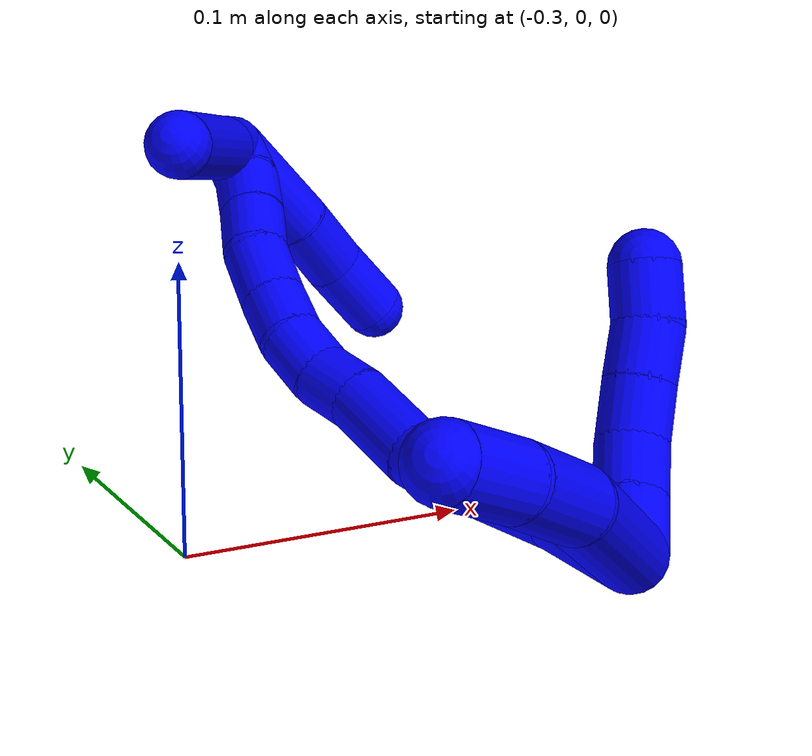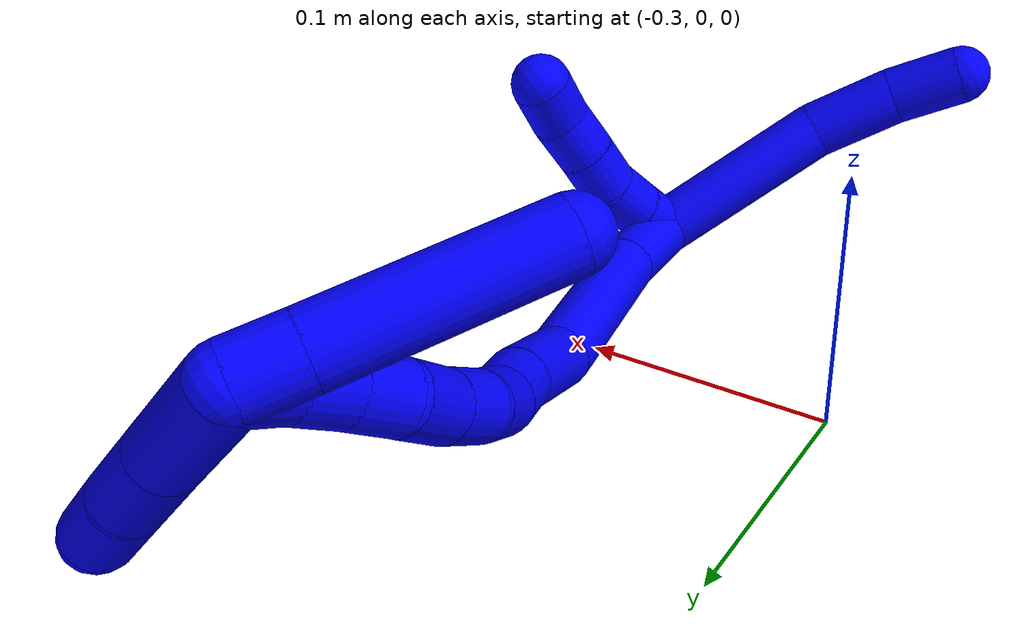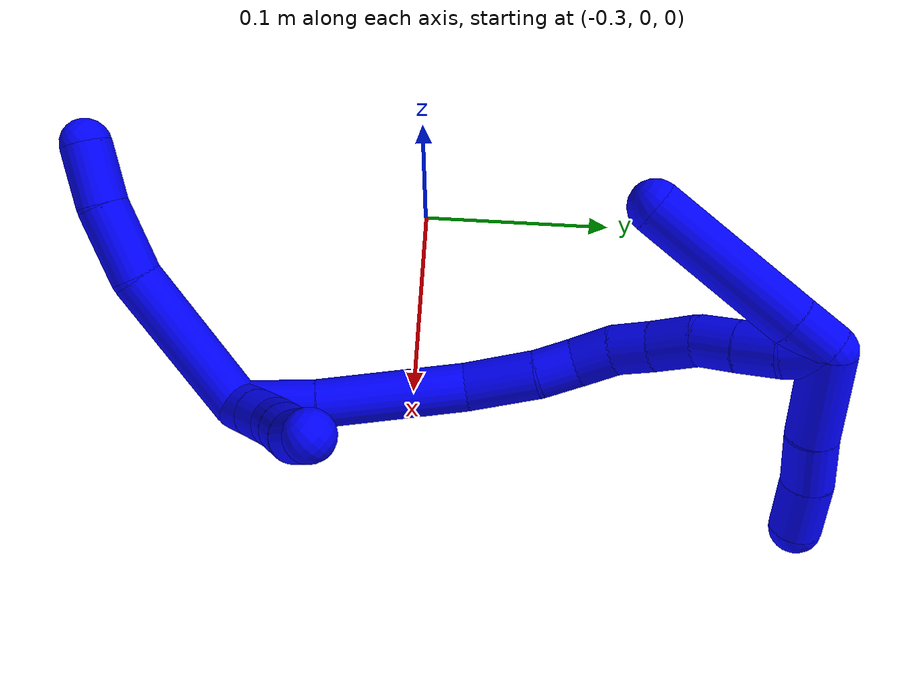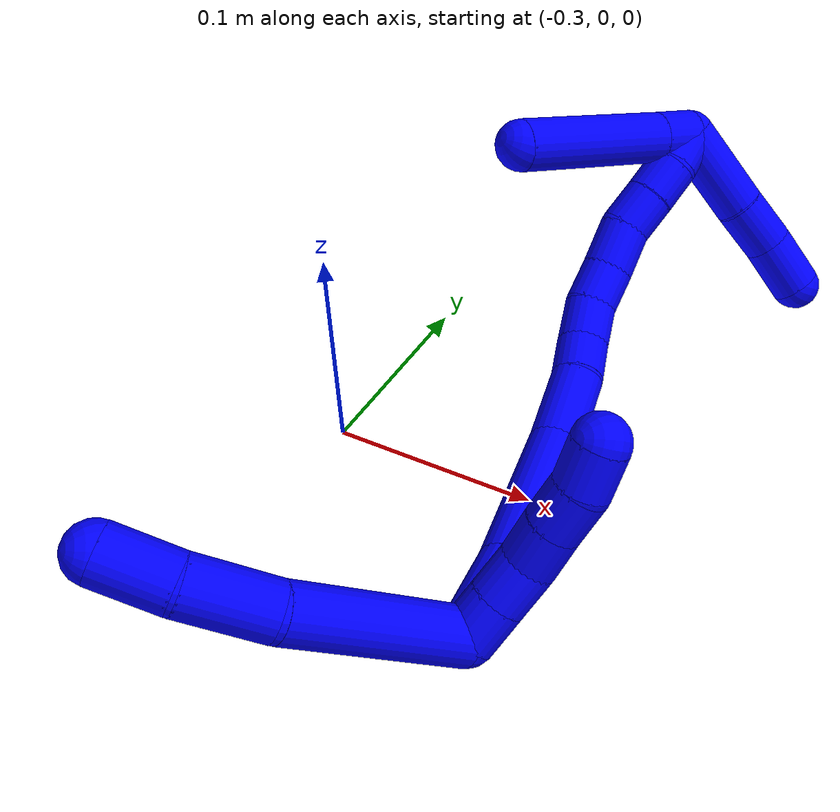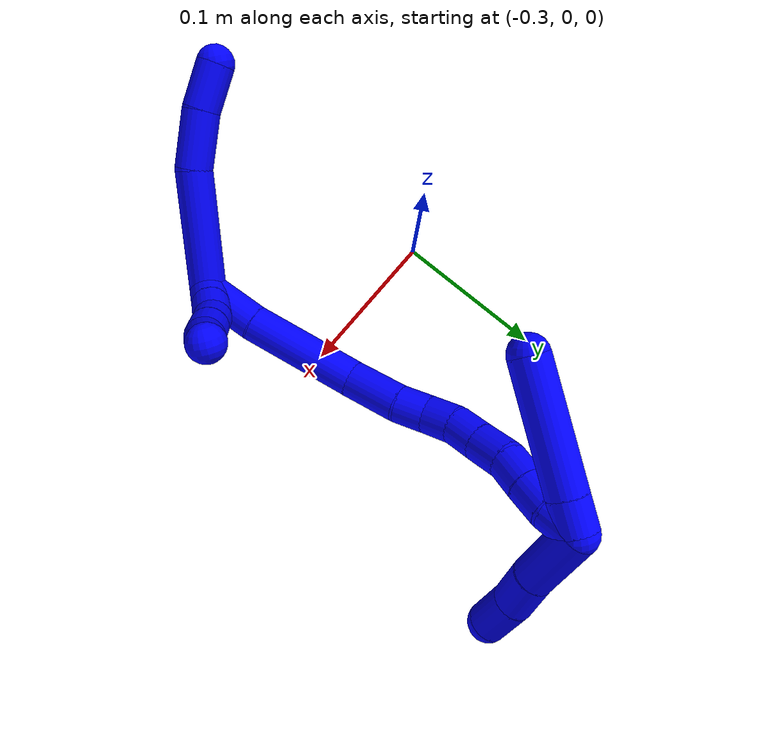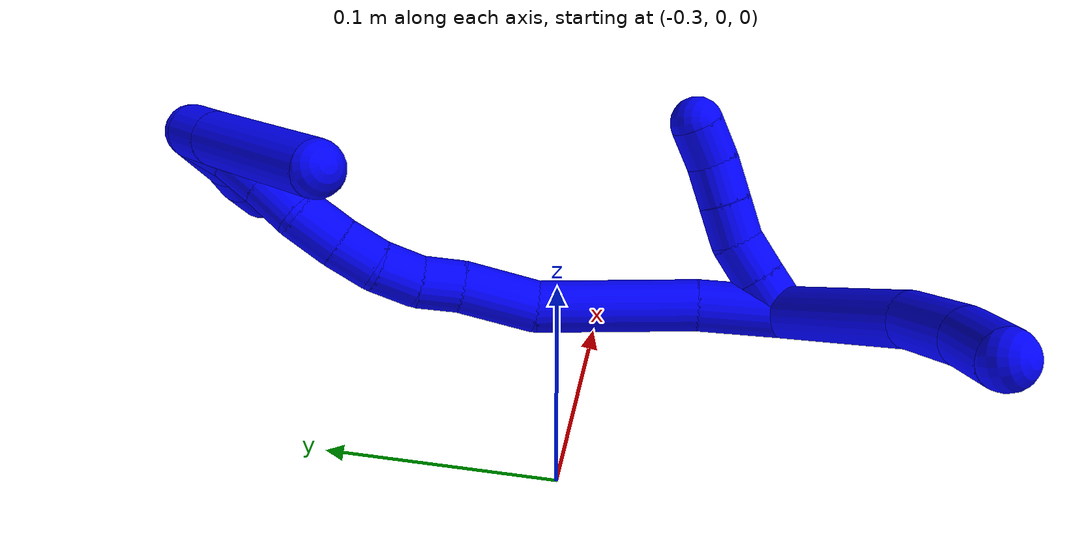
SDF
<sdf version="1.7">
 <world name="default">
  <model name="1">
   <static>0</static>
   <link name="1">
    <collision name="collision-cylinder-e_1_2_8">
     <pose>0.00278 0.004993 -0.040425 -3.0187 0.068136 -1.01178</pose>
     <geometry><cylinder><radius>0.0125</radius><length>0.081654</length></cylinder></geometry>
     <surface>
      <friction><ode><mu>1.16</mu><mu2>1.16</mu2><slip1>0</slip1><slip2>0</slip2></ode></friction>
      <contact><ode><kp>1e+06</kp><kd>1</kd><max_vel>0</max_vel><min_depth>0.001</min_depth></ode></contact>
     </surface>
    </collision>
    <visual name="visual-cylinder-e_1_2_8">
     <pose>0.00278 0.004993 -0.040425 -3.0187 0.068136 -1.01178</pose>
     <geometry><cylinder><radius>0.0125</radius><length>0.081654</length></cylinder></geometry>
     <material><ambient>0 0 1 1</ambient></material>
    </visual>
    <collision name="collision-cylinder-e_2_8_9">
     <pose>0.009618 0.01579 -0.098448 -2.823 0.21564 -1.18576</pose>
     <geometry><cylinder><radius>0.0125</radius><length>0.037938</length></cylinder></geometry>
     <surface>
      <friction><ode><mu>1.16</mu><mu2>1.16</mu2><slip1>0</slip1><slip2>0</slip2></ode></friction>
      <contact><ode><kp>1e+06</kp><kd>1</kd><max_vel>0</max_vel><min_depth>0.001</min_depth></ode></contact>
     </surface>
    </collision>
    <visual name="visual-cylinder-e_2_8_9">
     <pose>0.009618 0.01579 -0.098448 -2.823 0.21564 -1.18576</pose>
     <geometry><cylinder><radius>0.0125</radius><length>0.037938</length></cylinder></geometry>
     <material><ambient>0 0 1 1</ambient></material>
    </visual>
    <collision name="collision-cylinder-e_3_9_6">
     <pose>0.018261 0.028159 -0.128969 -2.67159 0.306284 -1.14524</pose>
     <geometry><cylinder><radius>0.0125</radius><length>0.030408</length></cylinder></geometry>
     <surface>
      <friction><ode><mu>1.16</mu><mu2>1.16</mu2><slip1>0</slip1><slip2>0</slip2></ode></friction>
      <contact><ode><kp>1e+06</kp><kd>1</kd><max_vel>0</max_vel><min_depth>0.001</min_depth></ode></contact>
     </surface>
    </collision>
    <visual name="visual-cylinder-e_3_9_6">
     <pose>0.018261 0.028159 -0.128969 -2.67159 0.306284 -1.14524</pose>
     <geometry><cylinder><radius>0.0125</radius><length>0.030408</length></cylinder></geometry>
     <material><ambient>0 0 1 1</ambient></material>
    </visual>
    <collision name="collision-cylinder-e_1_2_10">
     <pose>-0.007935 0.005463 0.002682 -1.11432 -0.916551 0.596333</pose>
     <geometry><cylinder><radius>0.0125</radius><length>0.02</length></cylinder></geometry>
     <surface>
      <friction><ode><mu>1.16</mu><mu2>1.16</mu2><slip1>0</slip1><slip2>0</slip2></ode></friction>
      <contact><ode><kp>1e+06</kp><kd>1</kd><max_vel>0</max_vel><min_depth>0.001</min_depth></ode></contact>
     </surface>
    </collision>
    <visual name="visual-cylinder-e_1_2_10">
     <pose>-0.007935 0.005463 0.002682 -1.11432 -0.916551 0.596333</pose>
     <geometry><cylinder><radius>0.0125</radius><length>0.02</length></cylinder></geometry>
     <material><ambient>0 0 1 1</ambient></material>
    </visual>
    <collision name="collision-cylinder-e_2_10_11">
     <pose>-0.023918 0.016291 0.007902 -1.1292 -0.935363 0.619202</pose>
     <geometry><cylinder><radius>0.0125</radius><length>0.02</length></cylinder></geometry>
     <surface>
      <friction><ode><mu>1.16</mu><mu2>1.16</mu2><slip1>0</slip1><slip2>0</slip2></ode></friction>
      <contact><ode><kp>1e+06</kp><kd>1</kd><max_vel>0</max_vel><min_depth>0.001</min_depth></ode></contact>
     </surface>
    </collision>
    <visual name="visual-cylinder-e_2_10_11">
     <pose>-0.023918 0.016291 0.007902 -1.1292 -0.935363 0.619202</pose>
     <geometry><cylinder><radius>0.0125</radius><length>0.02</length></cylinder></geometry>
     <material><ambient>0 0 1 1</ambient></material>
    </visual>
    <collision name="collision-cylinder-e_3_11_12">
     <pose>-0.040842 0.026264 0.01045 -1.56813 -1.09202 1.08965</pose>
     <geometry><cylinder><radius>0.0125</radius><length>0.02</length></cylinder></geometry>
     <surface>
      <friction><ode><mu>1.16</mu><mu2>1.16</mu2><slip1>0</slip1><slip2>0</slip2></ode></friction>
      <contact><ode><kp>1e+06</kp><kd>1</kd><max_vel>0</max_vel><min_depth>0.001</min_depth></ode></contact>
     </surface>
    </collision>
    <visual name="visual-cylinder-e_3_11_12">
     <pose>-0.040842 0.026264 0.01045 -1.56813 -1.09202 1.08965</pose>
     <geometry><cylinder><radius>0.0125</radius><length>0.02</length></cylinder></geometry>
     <material><ambient>0 0 1 1</ambient></material>
    </visual>
    <collision name="collision-cylinder-e_4_12_13">
     <pose>-0.058719 0.035216 0.010776 -1.49879 -1.12007 1.05626</pose>
     <geometry><cylinder><radius>0.0125</radius><length>0.02</length></cylinder></geometry>
     <surface>
      <friction><ode><mu>1.16</mu><mu2>1.16</mu2><slip1>0</slip1><slip2>0</slip2></ode></friction>
      <contact><ode><kp>1e+06</kp><kd>1</kd><max_vel>0</max_vel><min_depth>0.001</min_depth></ode></contact>
     </surface>
    </collision>
    <visual name="visual-cylinder-e_4_12_13">
     <pose>-0.058719 0.035216 0.010776 -1.49879 -1.12007 1.05626</pose>
     <geometry><cylinder><radius>0.0125</radius><length>0.02</length></cylinder></geometry>
     <material><ambient>0 0 1 1</ambient></material>
    </visual>
    <collision name="collision-cylinder-e_5_13_5">
     <pose>-0.075617 0.045667 0.010493 -1.66815 -0.910292 0.989562</pose>
     <geometry><cylinder><radius>0.0125</radius><length>0.02</length></cylinder></geometry>
     <surface>
      <friction><ode><mu>1.16</mu><mu2>1.16</mu2><slip1>0</slip1><slip2>0</slip2></ode></friction>
      <contact><ode><kp>1e+06</kp><kd>1</kd><max_vel>0</max_vel><min_depth>0.001</min_depth></ode></contact>
     </surface>
    </collision>
    <visual name="visual-cylinder-e_5_13_5">
     <pose>-0.075617 0.045667 0.010493 -1.66815 -0.910292 0.989562</pose>
     <geometry><cylinder><radius>0.0125</radius><length>0.02</length></cylinder></geometry>
     <material><ambient>0 0 1 1</ambient></material>
    </visual>
    <collision name="collision-cylinder-e_1_2_14">
     <pose>-0.000406 0.015433 0.012999 -0.870801 -0.020115 0.009357</pose>
     <geometry><cylinder><radius>0.0125</radius><length>0.040365</length></cylinder></geometry>
     <surface>
      <friction><ode><mu>1.16</mu><mu2>1.16</mu2><slip1>0</slip1><slip2>0</slip2></ode></friction>
      <contact><ode><kp>1e+06</kp><kd>1</kd><max_vel>0</max_vel><min_depth>0.001</min_depth></ode></contact>
     </surface>
    </collision>
    <visual name="visual-cylinder-e_1_2_14">
     <pose>-0.000406 0.015433 0.012999 -0.870801 -0.020115 0.009357</pose>
     <geometry><cylinder><radius>0.0125</radius><length>0.040365</length></cylinder></geometry>
     <material><ambient>0 0 1 1</ambient></material>
    </visual>
    <collision name="collision-cylinder-e_2_14_15">
     <pose>0.00207 0.061515 0.048839 -0.930355 0.075247 -0.037781</pose>
     <geometry><cylinder><radius>0.0125</radius><length>0.076663</length></cylinder></geometry>
     <surface>
      <friction><ode><mu>1.16</mu><mu2>1.16</mu2><slip1>0</slip1><slip2>0</slip2></ode></friction>
      <contact><ode><kp>1e+06</kp><kd>1</kd><max_vel>0</max_vel><min_depth>0.001</min_depth></ode></contact>
     </surface>
    </collision>
    <visual name="visual-cylinder-e_2_14_15">
     <pose>0.00207 0.061515 0.048839 -0.930355 0.075247 -0.037781</pose>
     <geometry><cylinder><radius>0.0125</radius><length>0.076663</length></cylinder></geometry>
     <material><ambient>0 0 1 1</ambient></material>
    </visual>
    <collision name="collision-cylinder-e_3_15_16">
     <pose>0.001598 0.108796 0.079638 -1.12446 -0.179877 0.113518</pose>
     <geometry><cylinder><radius>0.0125</radius><length>0.037482</length></cylinder></geometry>
     <surface>
      <friction><ode><mu>1.16</mu><mu2>1.16</mu2><slip1>0</slip1><slip2>0</slip2></ode></friction>
      <contact><ode><kp>1e+06</kp><kd>1</kd><max_vel>0</max_vel><min_depth>0.001</min_depth></ode></contact>
     </surface>
    </collision>
    <visual name="visual-cylinder-e_3_15_16">
     <pose>0.001598 0.108796 0.079638 -1.12446 -0.179877 0.113518</pose>
     <geometry><cylinder><radius>0.0125</radius><length>0.037482</length></cylinder></geometry>
     <material><ambient>0 0 1 1</ambient></material>
    </visual>
    <collision name="collision-cylinder-e_4_16_17">
     <pose>-0.00199 0.134981 0.091479 -1.18484 -0.022885 0.015404</pose>
     <geometry><cylinder><radius>0.0125</radius><length>0.020628</length></cylinder></geometry>
     <surface>
      <friction><ode><mu>1.16</mu><mu2>1.16</mu2><slip1>0</slip1><slip2>0</slip2></ode></friction>
      <contact><ode><kp>1e+06</kp><kd>1</kd><max_vel>0</max_vel><min_depth>0.001</min_depth></ode></contact>
     </surface>
    </collision>
    <visual name="visual-cylinder-e_4_16_17">
     <pose>-0.00199 0.134981 0.091479 -1.18484 -0.022885 0.015404</pose>
     <geometry><cylinder><radius>0.0125</radius><length>0.020628</length></cylinder></geometry>
     <material><ambient>0 0 1 1</ambient></material>
    </visual>
    <collision name="collision-cylinder-e_5_17_18">
     <pose>-0.004984 0.15428 0.097842 -1.32155 -0.26761 0.208517</pose>
     <geometry><cylinder><radius>0.0125</radius><length>0.020855</length></cylinder></geometry>
     <surface>
      <friction><ode><mu>1.16</mu><mu2>1.16</mu2><slip1>0</slip1><slip2>0</slip2></ode></friction>
      <contact><ode><kp>1e+06</kp><kd>1</kd><max_vel>0</max_vel><min_depth>0.001</min_depth></ode></contact>
     </surface>
    </collision>
    <visual name="visual-cylinder-e_5_17_18">
     <pose>-0.004984 0.15428 0.097842 -1.32155 -0.26761 0.208517</pose>
     <geometry><cylinder><radius>0.0125</radius><length>0.020855</length></cylinder></geometry>
     <material><ambient>0 0 1 1</ambient></material>
    </visual>
    <collision name="collision-cylinder-e_6_18_19">
     <pose>-0.012333 0.172453 0.103892 -1.17009 -0.465022 0.31117</pose>
     <geometry><cylinder><radius>0.0125</radius><length>0.020479</length></cylinder></geometry>
     <surface>
      <friction><ode><mu>1.16</mu><mu2>1.16</mu2><slip1>0</slip1><slip2>0</slip2></ode></friction>
      <contact><ode><kp>1e+06</kp><kd>1</kd><max_vel>0</max_vel><min_depth>0.001</min_depth></ode></contact>
     </surface>
    </collision>
    <visual name="visual-cylinder-e_6_18_19">
     <pose>-0.012333 0.172453 0.103892 -1.17009 -0.465022 0.31117</pose>
     <geometry><cylinder><radius>0.0125</radius><length>0.020479</length></cylinder></geometry>
     <material><ambient>0 0 1 1</ambient></material>
    </visual>
    <collision name="collision-cylinder-e_7_19_20">
     <pose>-0.022858 0.190302 0.110405 -1.26802 -0.541211 0.402427</pose>
     <geometry><cylinder><radius>0.0125</radius><length>0.023033</length></cylinder></geometry>
     <surface>
      <friction><ode><mu>1.16</mu><mu2>1.16</mu2><slip1>0</slip1><slip2>0</slip2></ode></friction>
      <contact><ode><kp>1e+06</kp><kd>1</kd><max_vel>0</max_vel><min_depth>0.001</min_depth></ode></contact>
     </surface>
    </collision>
    <visual name="visual-cylinder-e_7_19_20">
     <pose>-0.022858 0.190302 0.110405 -1.26802 -0.541211 0.402427</pose>
     <geometry><cylinder><radius>0.0125</radius><length>0.023033</length></cylinder></geometry>
     <material><ambient>0 0 1 1</ambient></material>
    </visual>
    <collision name="collision-cylinder-e_8_20_21">
     <pose>-0.035201 0.206368 0.117618 -0.999703 -0.681776 0.382709</pose>
     <geometry><cylinder><radius>0.0125</radius><length>0.020345</length></cylinder></geometry>
     <surface>
      <friction><ode><mu>1.16</mu><mu2>1.16</mu2><slip1>0</slip1><slip2>0</slip2></ode></friction>
      <contact><ode><kp>1e+06</kp><kd>1</kd><max_vel>0</max_vel><min_depth>0.001</min_depth></ode></contact>
     </surface>
    </collision>
    <visual name="visual-cylinder-e_8_20_21">
     <pose>-0.035201 0.206368 0.117618 -0.999703 -0.681776 0.382709</pose>
     <geometry><cylinder><radius>0.0125</radius><length>0.020345</length></cylinder></geometry>
     <material><ambient>0 0 1 1</ambient></material>
    </visual>
    <collision name="collision-cylinder-e_9_21_22">
     <pose>-0.047493 0.21985 0.126254 -1.00239 -0.62736 0.351763</pose>
     <geometry><cylinder><radius>0.0125</radius><length>0.02004</length></cylinder></geometry>
     <surface>
      <friction><ode><mu>1.16</mu><mu2>1.16</mu2><slip1>0</slip1><slip2>0</slip2></ode></friction>
      <contact><ode><kp>1e+06</kp><kd>1</kd><max_vel>0</max_vel><min_depth>0.001</min_depth></ode></contact>
     </surface>
    </collision>
    <visual name="visual-cylinder-e_9_21_22">
     <pose>-0.047493 0.21985 0.126254 -1.00239 -0.62736 0.351763</pose>
     <geometry><cylinder><radius>0.0125</radius><length>0.02004</length></cylinder></geometry>
     <material><ambient>0 0 1 1</ambient></material>
    </visual>
    <collision name="collision-cylinder-e_10_22_1">
     <pose>-0.057771 0.234693 0.134823 -1.08746 -0.452529 0.276549</pose>
     <geometry><cylinder><radius>0.0125</radius><length>0.02011</length></cylinder></geometry>
     <surface>
      <friction><ode><mu>1.16</mu><mu2>1.16</mu2><slip1>0</slip1><slip2>0</slip2></ode></friction>
      <contact><ode><kp>1e+06</kp><kd>1</kd><max_vel>0</max_vel><min_depth>0.001</min_depth></ode></contact>
     </surface>
    </collision>
    <visual name="visual-cylinder-e_10_22_1">
     <pose>-0.057771 0.234693 0.134823 -1.08746 -0.452529 0.276549</pose>
     <geometry><cylinder><radius>0.0125</radius><length>0.02011</length></cylinder></geometry>
     <material><ambient>0 0 1 1</ambient></material>
    </visual>
    <collision name="collision-cylinder-e_1_1_23">
     <pose>-0.059451 0.240661 0.129182 2.93732 0.263979 1.82672</pose>
     <geometry><cylinder><radius>0.0125</radius><length>0.020827</length></cylinder></geometry>
     <surface>
      <friction><ode><mu>1.16</mu><mu2>1.16</mu2><slip1>0</slip1><slip2>0</slip2></ode></friction>
      <contact><ode><kp>1e+06</kp><kd>1</kd><max_vel>0</max_vel><min_depth>0.001</min_depth></ode></contact>
     </surface>
    </collision>
    <visual name="visual-cylinder-e_1_1_23">
     <pose>-0.059451 0.240661 0.129182 2.93732 0.263979 1.82672</pose>
     <geometry><cylinder><radius>0.0125</radius><length>0.020827</length></cylinder></geometry>
     <material><ambient>0 0 1 1</ambient></material>
    </visual>
    <collision name="collision-cylinder-e_2_23_4">
     <pose>-0.046878 0.231202 0.081722 2.94685 0.251601 1.82625</pose>
     <geometry><cylinder><radius>0.0125</radius><length>0.079173</length></cylinder></geometry>
     <surface>
      <friction><ode><mu>1.16</mu><mu2>1.16</mu2><slip1>0</slip1><slip2>0</slip2></ode></friction>
      <contact><ode><kp>1e+06</kp><kd>1</kd><max_vel>0</max_vel><min_depth>0.001</min_depth></ode></contact>
     </surface>
    </collision>
    <visual name="visual-cylinder-e_2_23_4">
     <pose>-0.046878 0.231202 0.081722 2.94685 0.251601 1.82625</pose>
     <geometry><cylinder><radius>0.0125</radius><length>0.079173</length></cylinder></geometry>
     <material><ambient>0 0 1 1</ambient></material>
    </visual>
    <collision name="collision-cylinder-e_1_1_24">
     <pose>-0.059631 0.227699 0.155776 0.730366 0.112343 0.042991</pose>
     <geometry><cylinder><radius>0.0125</radius><length>0.045257</length></cylinder></geometry>
     <surface>
      <friction><ode><mu>1.16</mu><mu2>1.16</mu2><slip1>0</slip1><slip2>0</slip2></ode></friction>
      <contact><ode><kp>1e+06</kp><kd>1</kd><max_vel>0</max_vel><min_depth>0.001</min_depth></ode></contact>
     </surface>
    </collision>
    <visual name="visual-cylinder-e_1_1_24">
     <pose>-0.059631 0.227699 0.155776 0.730366 0.112343 0.042991</pose>
     <geometry><cylinder><radius>0.0125</radius><length>0.045257</length></cylinder></geometry>
     <material><ambient>0 0 1 1</ambient></material>
    </visual>
    <collision name="collision-cylinder-e_2_24_25">
     <pose>-0.055297 0.204926 0.183145 0.631801 0.135761 0.044434</pose>
     <geometry><cylinder><radius>0.0125</radius><length>0.026562</length></cylinder></geometry>
     <surface>
      <friction><ode><mu>1.16</mu><mu2>1.16</mu2><slip1>0</slip1><slip2>0</slip2></ode></friction>
      <contact><ode><kp>1e+06</kp><kd>1</kd><max_vel>0</max_vel><min_depth>0.001</min_depth></ode></contact>
     </surface>
    </collision>
    <visual name="visual-cylinder-e_2_24_25">
     <pose>-0.055297 0.204926 0.183145 0.631801 0.135761 0.044434</pose>
     <geometry><cylinder><radius>0.0125</radius><length>0.026562</length></cylinder></geometry>
     <material><ambient>0 0 1 1</ambient></material>
    </visual>
    <collision name="collision-cylinder-e_3_25_3">
     <pose>-0.051792 0.187392 0.20378 0.772576 0.121438 0.049442</pose>
     <geometry><cylinder><radius>0.0125</radius><length>0.028181</length></cylinder></geometry>
     <surface>
      <friction><ode><mu>1.16</mu><mu2>1.16</mu2><slip1>0</slip1><slip2>0</slip2></ode></friction>
      <contact><ode><kp>1e+06</kp><kd>1</kd><max_vel>0</max_vel><min_depth>0.001</min_depth></ode></contact>
     </surface>
    </collision>
    <visual name="visual-cylinder-e_3_25_3">
     <pose>-0.051792 0.187392 0.20378 0.772576 0.121438 0.049442</pose>
     <geometry><cylinder><radius>0.0125</radius><length>0.028181</length></cylinder></geometry>
     <material><ambient>0 0 1 1</ambient></material>
    </visual>
    <collision name="collision-sphere-3">
     <pose>-0.050085 0.177629 0.213796 0 -0 0</pose>
     <geometry><sphere><radius>0.0125</radius></sphere></geometry>
     <surface>
      <friction><ode><mu>1.16</mu><mu2>1.16</mu2><slip1>0</slip1><slip2>0</slip2></ode></friction>
      <contact><ode><kp>1e+06</kp><kd>1</kd><max_vel>0</max_vel><min_depth>0.001</min_depth></ode></contact>
     </surface>
    </collision>
    <visual name="visual-sphere-3">
     <pose>-0.050085 0.177629 0.213796 0 -0 0</pose>
     <geometry><sphere><radius>0.0125</radius></sphere></geometry>
     <material><ambient>0 0 1 1</ambient></material>
    </visual>
    <collision name="collision-sphere-25">
     <pose>-0.053499 0.197154 0.193764 0 -0 0</pose>
     <geometry><sphere><radius>0.0125</radius></sphere></geometry>
     <surface>
      <friction><ode><mu>1.16</mu><mu2>1.16</mu2><slip1>0</slip1><slip2>0</slip2></ode></friction>
      <contact><ode><kp>1e+06</kp><kd>1</kd><max_vel>0</max_vel><min_depth>0.001</min_depth></ode></contact>
     </surface>
    </collision>
    <visual name="visual-sphere-25">
     <pose>-0.053499 0.197154 0.193764 0 -0 0</pose>
     <geometry><sphere><radius>0.0125</radius></sphere></geometry>
     <material><ambient>0 0 1 1</ambient></material>
    </visual>
    <collision name="collision-sphere-24">
     <pose>-0.057094 0.212697 0.172526 0 -0 0</pose>
     <geometry><sphere><radius>0.0125</radius></sphere></geometry>
     <surface>
      <friction><ode><mu>1.16</mu><mu2>1.16</mu2><slip1>0</slip1><slip2>0</slip2></ode></friction>
      <contact><ode><kp>1e+06</kp><kd>1</kd><max_vel>0</max_vel><min_depth>0.001</min_depth></ode></contact>
     </surface>
    </collision>
    <visual name="visual-sphere-24">
     <pose>-0.057094 0.212697 0.172526 0 -0 0</pose>
     <geometry><sphere><radius>0.0125</radius></sphere></geometry>
     <material><ambient>0 0 1 1</ambient></material>
    </visual>
    <collision name="collision-sphere-4">
     <pose>-0.037023 0.223783 0.044107 0 -0 0</pose>
     <geometry><sphere><radius>0.0125</radius></sphere></geometry>
     <surface>
      <friction><ode><mu>1.16</mu><mu2>1.16</mu2><slip1>0</slip1><slip2>0</slip2></ode></friction>
      <contact><ode><kp>1e+06</kp><kd>1</kd><max_vel>0</max_vel><min_depth>0.001</min_depth></ode></contact>
     </surface>
    </collision>
    <visual name="visual-sphere-4">
     <pose>-0.037023 0.223783 0.044107 0 -0 0</pose>
     <geometry><sphere><radius>0.0125</radius></sphere></geometry>
     <material><ambient>0 0 1 1</ambient></material>
    </visual>
    <collision name="collision-sphere-23">
     <pose>-0.056733 0.238621 0.119338 0 -0 0</pose>
     <geometry><sphere><radius>0.0125</radius></sphere></geometry>
     <surface>
      <friction><ode><mu>1.16</mu><mu2>1.16</mu2><slip1>0</slip1><slip2>0</slip2></ode></friction>
      <contact><ode><kp>1e+06</kp><kd>1</kd><max_vel>0</max_vel><min_depth>0.001</min_depth></ode></contact>
     </surface>
    </collision>
    <visual name="visual-sphere-23">
     <pose>-0.056733 0.238621 0.119338 0 -0 0</pose>
     <geometry><sphere><radius>0.0125</radius></sphere></geometry>
     <material><ambient>0 0 1 1</ambient></material>
    </visual>
    <collision name="collision-sphere-1">
     <pose>-0.062168 0.2427 0.139026 0 -0 0</pose>
     <geometry><sphere><radius>0.0125</radius></sphere></geometry>
     <surface>
      <friction><ode><mu>1.16</mu><mu2>1.16</mu2><slip1>0</slip1><slip2>0</slip2></ode></friction>
      <contact><ode><kp>1e+06</kp><kd>1</kd><max_vel>0</max_vel><min_depth>0.001</min_depth></ode></contact>
     </surface>
    </collision>
    <visual name="visual-sphere-1">
     <pose>-0.062168 0.2427 0.139026 0 -0 0</pose>
     <geometry><sphere><radius>0.0125</radius></sphere></geometry>
     <material><ambient>0 0 1 1</ambient></material>
    </visual>
    <collision name="collision-sphere-22">
     <pose>-0.053375 0.226686 0.130621 0 -0 0</pose>
     <geometry><sphere><radius>0.0125</radius></sphere></geometry>
     <surface>
      <friction><ode><mu>1.16</mu><mu2>1.16</mu2><slip1>0</slip1><slip2>0</slip2></ode></friction>
      <contact><ode><kp>1e+06</kp><kd>1</kd><max_vel>0</max_vel><min_depth>0.001</min_depth></ode></contact>
     </surface>
    </collision>
    <visual name="visual-sphere-22">
     <pose>-0.053375 0.226686 0.130621 0 -0 0</pose>
     <geometry><sphere><radius>0.0125</radius></sphere></geometry>
     <material><ambient>0 0 1 1</ambient></material>
    </visual>
    <collision name="collision-sphere-21">
     <pose>-0.041611 0.213013 0.121887 0 -0 0</pose>
     <geometry><sphere><radius>0.0125</radius></sphere></geometry>
     <surface>
      <friction><ode><mu>1.16</mu><mu2>1.16</mu2><slip1>0</slip1><slip2>0</slip2></ode></friction>
      <contact><ode><kp>1e+06</kp><kd>1</kd><max_vel>0</max_vel><min_depth>0.001</min_depth></ode></contact>
     </surface>
    </collision>
    <visual name="visual-sphere-21">
     <pose>-0.041611 0.213013 0.121887 0 -0 0</pose>
     <geometry><sphere><radius>0.0125</radius></sphere></geometry>
     <material><ambient>0 0 1 1</ambient></material>
    </visual>
    <collision name="collision-sphere-11">
     <pose>-0.031966 0.021657 0.010438 0 -0 0</pose>
     <geometry><sphere><radius>0.0125</radius></sphere></geometry>
     <surface>
      <friction><ode><mu>1.16</mu><mu2>1.16</mu2><slip1>0</slip1><slip2>0</slip2></ode></friction>
      <contact><ode><kp>1e+06</kp><kd>1</kd><max_vel>0</max_vel><min_depth>0.001</min_depth></ode></contact>
     </surface>
    </collision>
    <visual name="visual-sphere-11">
     <pose>-0.031966 0.021657 0.010438 0 -0 0</pose>
     <geometry><sphere><radius>0.0125</radius></sphere></geometry>
     <material><ambient>0 0 1 1</ambient></material>
    </visual>
    <collision name="collision-sphere-10">
     <pose>-0.01587 0.010925 0.005365 0 -0 0</pose>
     <geometry><sphere><radius>0.0125</radius></sphere></geometry>
     <surface>
      <friction><ode><mu>1.16</mu><mu2>1.16</mu2><slip1>0</slip1><slip2>0</slip2></ode></friction>
      <contact><ode><kp>1e+06</kp><kd>1</kd><max_vel>0</max_vel><min_depth>0.001</min_depth></ode></contact>
     </surface>
    </collision>
    <visual name="visual-sphere-10">
     <pose>-0.01587 0.010925 0.005365 0 -0 0</pose>
     <geometry><sphere><radius>0.0125</radius></sphere></geometry>
     <material><ambient>0 0 1 1</ambient></material>
    </visual>
    <collision name="collision-sphere-6">
     <pose>0.022845 0.034724 -0.141894 0 -0 0</pose>
     <geometry><sphere><radius>0.0125</radius></sphere></geometry>
     <surface>
      <friction><ode><mu>1.16</mu><mu2>1.16</mu2><slip1>0</slip1><slip2>0</slip2></ode></friction>
      <contact><ode><kp>1e+06</kp><kd>1</kd><max_vel>0</max_vel><min_depth>0.001</min_depth></ode></contact>
     </surface>
    </collision>
    <visual name="visual-sphere-6">
     <pose>0.022845 0.034724 -0.141894 0 -0 0</pose>
     <geometry><sphere><radius>0.0125</radius></sphere></geometry>
     <material><ambient>0 0 1 1</ambient></material>
    </visual>
    <collision name="collision-sphere-9">
     <pose>0.013677 0.021594 -0.116045 0 -0 0</pose>
     <geometry><sphere><radius>0.0125</radius></sphere></geometry>
     <surface>
      <friction><ode><mu>1.16</mu><mu2>1.16</mu2><slip1>0</slip1><slip2>0</slip2></ode></friction>
      <contact><ode><kp>1e+06</kp><kd>1</kd><max_vel>0</max_vel><min_depth>0.001</min_depth></ode></contact>
     </surface>
    </collision>
    <visual name="visual-sphere-9">
     <pose>0.013677 0.021594 -0.116045 0 -0 0</pose>
     <geometry><sphere><radius>0.0125</radius></sphere></geometry>
     <material><ambient>0 0 1 1</ambient></material>
    </visual>
    <collision name="collision-sphere-2">
     <geometry><sphere><radius>0.0125</radius></sphere></geometry>
     <surface>
      <friction><ode><mu>1.16</mu><mu2>1.16</mu2><slip1>0</slip1><slip2>0</slip2></ode></friction>
      <contact><ode><kp>1e+06</kp><kd>1</kd><max_vel>0</max_vel><min_depth>0.001</min_depth></ode></contact>
     </surface>
    </collision>
    <visual name="visual-sphere-2">
     <geometry><sphere><radius>0.0125</radius></sphere></geometry>
     <material><ambient>0 0 1 1</ambient></material>
    </visual>
    <collision name="collision-sphere-19">
     <pose>-0.016925 0.18088 0.107462 0 -0 0</pose>
     <geometry><sphere><radius>0.0125</radius></sphere></geometry>
     <surface>
      <friction><ode><mu>1.16</mu><mu2>1.16</mu2><slip1>0</slip1><slip2>0</slip2></ode></friction>
      <contact><ode><kp>1e+06</kp><kd>1</kd><max_vel>0</max_vel><min_depth>0.001</min_depth></ode></contact>
     </surface>
    </collision>
    <visual name="visual-sphere-19">
     <pose>-0.016925 0.18088 0.107462 0 -0 0</pose>
     <geometry><sphere><radius>0.0125</radius></sphere></geometry>
     <material><ambient>0 0 1 1</ambient></material>
    </visual>
    <collision name="collision-sphere-8">
     <pose>0.005559 0.009986 -0.080851 0 -0 0</pose>
     <geometry><sphere><radius>0.0125</radius></sphere></geometry>
     <surface>
      <friction><ode><mu>1.16</mu><mu2>1.16</mu2><slip1>0</slip1><slip2>0</slip2></ode></friction>
      <contact><ode><kp>1e+06</kp><kd>1</kd><max_vel>0</max_vel><min_depth>0.001</min_depth></ode></contact>
     </surface>
    </collision>
    <visual name="visual-sphere-8">
     <pose>0.005559 0.009986 -0.080851 0 -0 0</pose>
     <geometry><sphere><radius>0.0125</radius></sphere></geometry>
     <material><ambient>0 0 1 1</ambient></material>
    </visual>
    <collision name="collision-sphere-12">
     <pose>-0.049718 0.030871 0.010463 0 -0 0</pose>
     <geometry><sphere><radius>0.0125</radius></sphere></geometry>
     <surface>
      <friction><ode><mu>1.16</mu><mu2>1.16</mu2><slip1>0</slip1><slip2>0</slip2></ode></friction>
      <contact><ode><kp>1e+06</kp><kd>1</kd><max_vel>0</max_vel><min_depth>0.001</min_depth></ode></contact>
     </surface>
    </collision>
    <visual name="visual-sphere-12">
     <pose>-0.049718 0.030871 0.010463 0 -0 0</pose>
     <geometry><sphere><radius>0.0125</radius></sphere></geometry>
     <material><ambient>0 0 1 1</ambient></material>
    </visual>
    <collision name="collision-sphere-13">
     <pose>-0.06772 0.03956 0.01109 0 -0 0</pose>
     <geometry><sphere><radius>0.0125</radius></sphere></geometry>
     <surface>
      <friction><ode><mu>1.16</mu><mu2>1.16</mu2><slip1>0</slip1><slip2>0</slip2></ode></friction>
      <contact><ode><kp>1e+06</kp><kd>1</kd><max_vel>0</max_vel><min_depth>0.001</min_depth></ode></contact>
     </surface>
    </collision>
    <visual name="visual-sphere-13">
     <pose>-0.06772 0.03956 0.01109 0 -0 0</pose>
     <geometry><sphere><radius>0.0125</radius></sphere></geometry>
     <material><ambient>0 0 1 1</ambient></material>
    </visual>
    <collision name="collision-sphere-5">
     <pose>-0.083514 0.051773 0.009897 0 -0 0</pose>
     <geometry><sphere><radius>0.0125</radius></sphere></geometry>
     <surface>
      <friction><ode><mu>1.16</mu><mu2>1.16</mu2><slip1>0</slip1><slip2>0</slip2></ode></friction>
      <contact><ode><kp>1e+06</kp><kd>1</kd><max_vel>0</max_vel><min_depth>0.001</min_depth></ode></contact>
     </surface>
    </collision>
    <visual name="visual-sphere-5">
     <pose>-0.083514 0.051773 0.009897 0 -0 0</pose>
     <geometry><sphere><radius>0.0125</radius></sphere></geometry>
     <material><ambient>0 0 1 1</ambient></material>
    </visual>
    <collision name="collision-sphere-14">
     <pose>-0.000812 0.030867 0.025999 0 -0 0</pose>
     <geometry><sphere><radius>0.0125</radius></sphere></geometry>
     <surface>
      <friction><ode><mu>1.16</mu><mu2>1.16</mu2><slip1>0</slip1><slip2>0</slip2></ode></friction>
      <contact><ode><kp>1e+06</kp><kd>1</kd><max_vel>0</max_vel><min_depth>0.001</min_depth></ode></contact>
     </surface>
    </collision>
    <visual name="visual-sphere-14">
     <pose>-0.000812 0.030867 0.025999 0 -0 0</pose>
     <geometry><sphere><radius>0.0125</radius></sphere></geometry>
     <material><ambient>0 0 1 1</ambient></material>
    </visual>
    <collision name="collision-sphere-15">
     <pose>0.004951 0.092164 0.071679 0 -0 0</pose>
     <geometry><sphere><radius>0.0125</radius></sphere></geometry>
     <surface>
      <friction><ode><mu>1.16</mu><mu2>1.16</mu2><slip1>0</slip1><slip2>0</slip2></ode></friction>
      <contact><ode><kp>1e+06</kp><kd>1</kd><max_vel>0</max_vel><min_depth>0.001</min_depth></ode></contact>
     </surface>
    </collision>
    <visual name="visual-sphere-15">
     <pose>0.004951 0.092164 0.071679 0 -0 0</pose>
     <geometry><sphere><radius>0.0125</radius></sphere></geometry>
     <material><ambient>0 0 1 1</ambient></material>
    </visual>
    <collision name="collision-sphere-16">
     <pose>-0.001754 0.125429 0.087598 0 -0 0</pose>
     <geometry><sphere><radius>0.0125</radius></sphere></geometry>
     <surface>
      <friction><ode><mu>1.16</mu><mu2>1.16</mu2><slip1>0</slip1><slip2>0</slip2></ode></friction>
      <contact><ode><kp>1e+06</kp><kd>1</kd><max_vel>0</max_vel><min_depth>0.001</min_depth></ode></contact>
     </surface>
    </collision>
    <visual name="visual-sphere-16">
     <pose>-0.001754 0.125429 0.087598 0 -0 0</pose>
     <geometry><sphere><radius>0.0125</radius></sphere></geometry>
     <material><ambient>0 0 1 1</ambient></material>
    </visual>
    <collision name="collision-sphere-17">
     <pose>-0.002227 0.144534 0.095361 0 -0 0</pose>
     <geometry><sphere><radius>0.0125</radius></sphere></geometry>
     <surface>
      <friction><ode><mu>1.16</mu><mu2>1.16</mu2><slip1>0</slip1><slip2>0</slip2></ode></friction>
      <contact><ode><kp>1e+06</kp><kd>1</kd><max_vel>0</max_vel><min_depth>0.001</min_depth></ode></contact>
     </surface>
    </collision>
    <visual name="visual-sphere-17">
     <pose>-0.002227 0.144534 0.095361 0 -0 0</pose>
     <geometry><sphere><radius>0.0125</radius></sphere></geometry>
     <material><ambient>0 0 1 1</ambient></material>
    </visual>
    <collision name="collision-sphere-18">
     <pose>-0.007741 0.164026 0.100322 0 -0 0</pose>
     <geometry><sphere><radius>0.0125</radius></sphere></geometry>
     <surface>
      <friction><ode><mu>1.16</mu><mu2>1.16</mu2><slip1>0</slip1><slip2>0</slip2></ode></friction>
      <contact><ode><kp>1e+06</kp><kd>1</kd><max_vel>0</max_vel><min_depth>0.001</min_depth></ode></contact>
     </surface>
    </collision>
    <visual name="visual-sphere-18">
     <pose>-0.007741 0.164026 0.100322 0 -0 0</pose>
     <geometry><sphere><radius>0.0125</radius></sphere></geometry>
     <material><ambient>0 0 1 1</ambient></material>
    </visual>
    <collision name="collision-sphere-20">
     <pose>-0.028791 0.199723 0.113348 0 -0 0</pose>
     <geometry><sphere><radius>0.0125</radius></sphere></geometry>
     <surface>
      <friction><ode><mu>1.16</mu><mu2>1.16</mu2><slip1>0</slip1><slip2>0</slip2></ode></friction>
      <contact><ode><kp>1e+06</kp><kd>1</kd><max_vel>0</max_vel><min_depth>0.001</min_depth></ode></contact>
     </surface>
    </collision>
    <visual name="visual-sphere-20">
     <pose>-0.028791 0.199723 0.113348 0 -0 0</pose>
     <geometry><sphere><radius>0.0125</radius></sphere></geometry>
     <material><ambient>0 0 1 1</ambient></material>
    </visual>
    <inertial>
     <pose>-0.022829 0.113926 0.053591 0 -0 0</pose>
     <mass>0.75</mass>
     <inertia><ixx>9e-05</ixx><ixy>0</ixy><ixz>0</ixz><iyy>5.7e-05</iyy><iyz>0</iyz><izz>-5.8e-05</izz></inertia>
    </inertial>
   </link>
   <pose>-0.183771 -0.087969 0.011495 2.43383 0.833621 -3.06142</pose>
  </model>
 </world>
</sdf>
